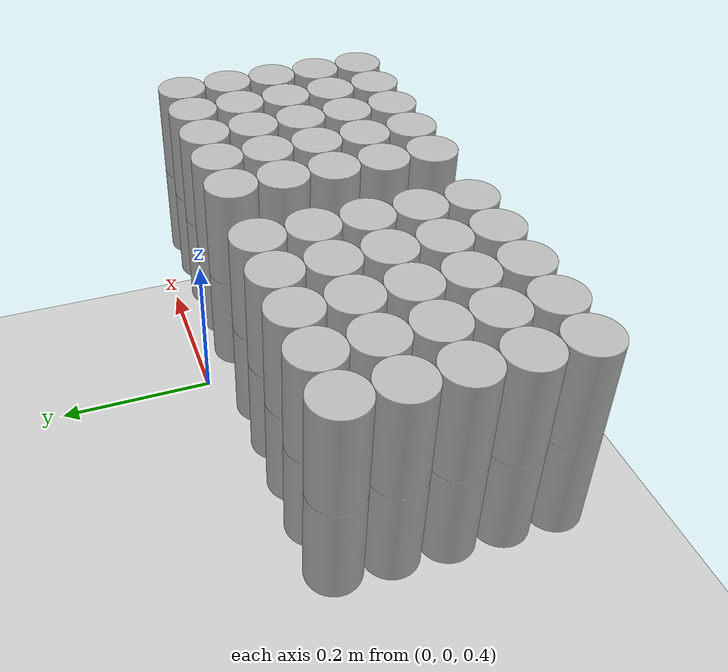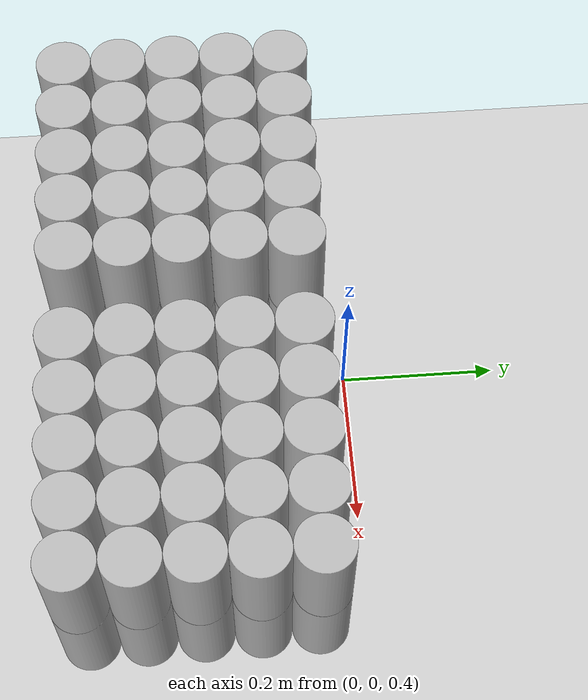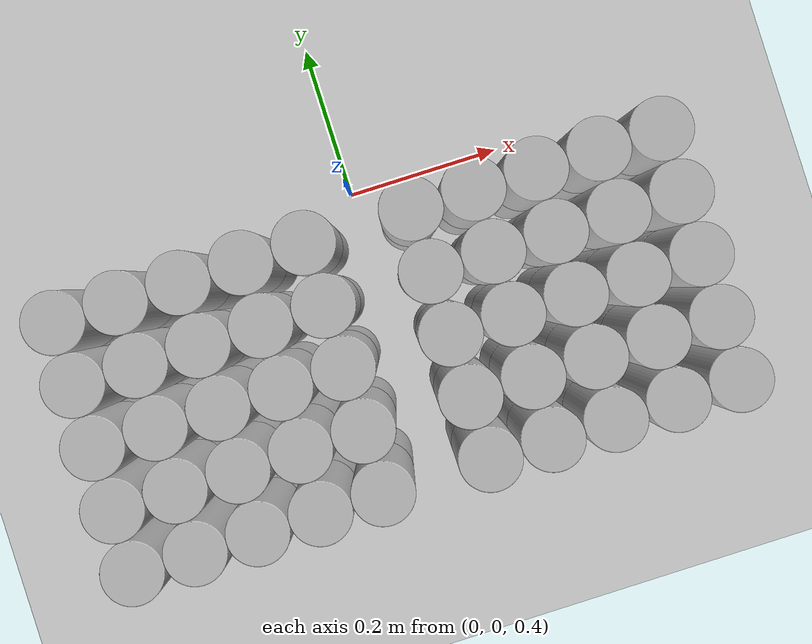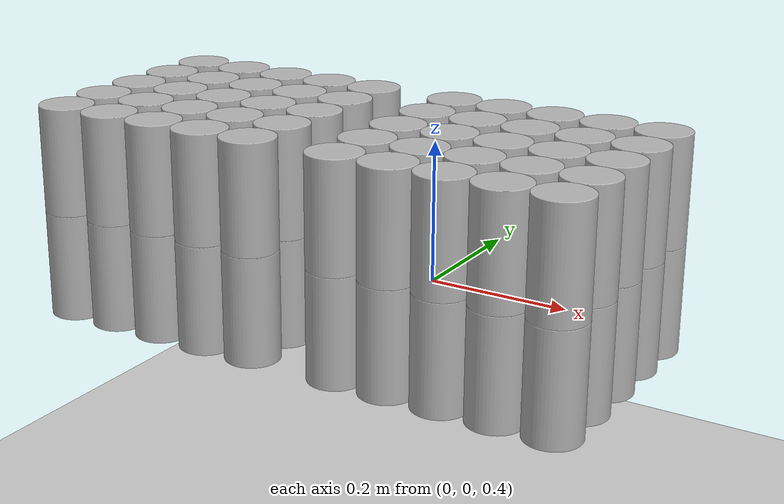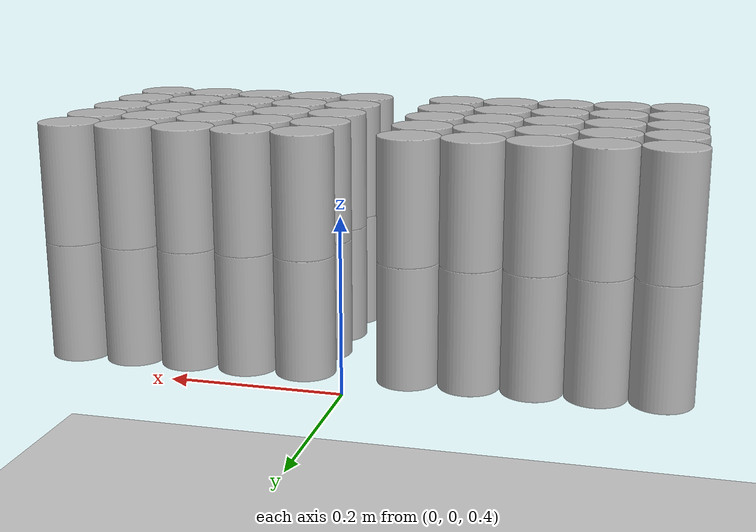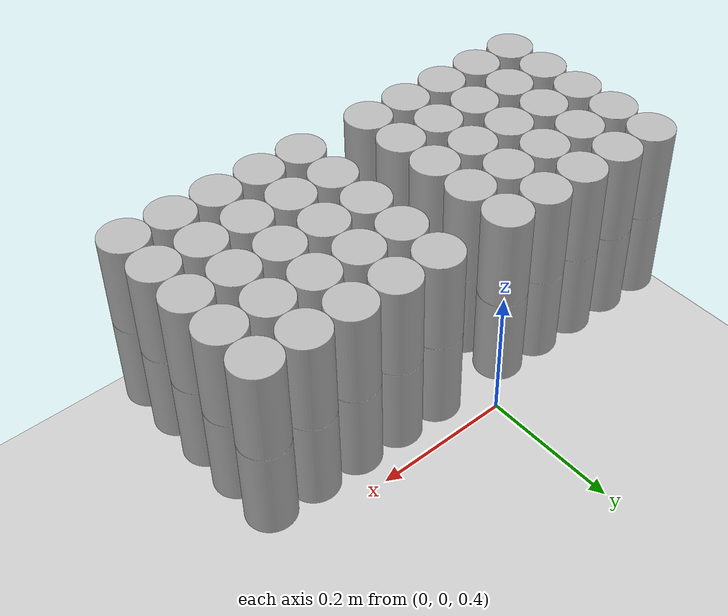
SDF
<sdf version="1.4">
 <world name="default">
  <include><uri>model://sun</uri></include>
  <include><uri>model://ground_plane</uri></include>
  <include>
   <name>chip_star_0.06_-0.34_0.4</name>
   <pose>0.06 -0.34 0.4 0 0 0.372294339718</pose>
   <uri>model://chip_star</uri>
  </include>
  <include>
   <name>chip_star_0.06_-0.34_0.54</name>
   <pose>0.06 -0.34 0.54 0 0 4.19292755349</pose>
   <uri>model://chip_star</uri>
  </include>
  <include>
   <name>chip_star_0.06_-0.27_0.4</name>
   <pose>0.06 -0.27 0.4 0 0 0.649413143931</pose>
   <uri>model://chip_star</uri>
  </include>
  <include>
   <name>chip_star_0.06_-0.27_0.54</name>
   <pose>0.06 -0.27 0.54 0 0 2.176246246</pose>
   <uri>model://chip_star</uri>
  </include>
  <include>
   <name>chip_star_0.06_-0.2_0.4</name>
   <pose>0.06 -0.2 0.4 0 0 1.70386393982</pose>
   <uri>model://chip_star</uri>
  </include>
  <include>
   <name>chip_star_0.06_-0.2_0.54</name>
   <pose>0.06 -0.2 0.54 0 0 2.72870989938</pose>
   <uri>model://chip_star</uri>
  </include>
  <include>
   <name>chip_star_0.06_-0.13_0.4</name>
   <pose>0.06 -0.13 0.4 0 0 4.37968260525</pose>
   <uri>model://chip_star</uri>
  </include>
  <include>
   <name>chip_star_0.06_-0.13_0.54</name>
   <pose>0.06 -0.13 0.54 0 0 3.09603425473</pose>
   <uri>model://chip_star</uri>
  </include>
  <include>
   <name>chip_star_0.06_-0.06_0.4</name>
   <pose>0.06 -0.06 0.4 0 0 3.70830724734</pose>
   <uri>model://chip_star</uri>
  </include>
  <include>
   <name>chip_star_0.06_-0.06_0.54</name>
   <pose>0.06 -0.06 0.54 0 0 0.752157486312</pose>
   <uri>model://chip_star</uri>
  </include>
  <include>
   <name>chip_star_0.13_-0.34_0.4</name>
   <pose>0.13 -0.34 0.4 0 0 4.29740945381</pose>
   <uri>model://chip_star</uri>
  </include>
  <include>
   <name>chip_star_0.13_-0.34_0.54</name>
   <pose>0.13 -0.34 0.54 0 0 4.4844617661</pose>
   <uri>model://chip_star</uri>
  </include>
  <include>
   <name>chip_star_0.13_-0.27_0.4</name>
   <pose>0.13 -0.27 0.4 0 0 3.32425704071</pose>
   <uri>model://chip_star</uri>
  </include>
  <include>
   <name>chip_star_0.13_-0.27_0.54</name>
   <pose>0.13 -0.27 0.54 0 0 1.85671652459</pose>
   <uri>model://chip_star</uri>
  </include>
  <include>
   <name>chip_star_0.13_-0.2_0.4</name>
   <pose>0.13 -0.2 0.4 0 0 3.16116870584</pose>
   <uri>model://chip_star</uri>
  </include>
  <include>
   <name>chip_star_0.13_-0.2_0.54</name>
   <pose>0.13 -0.2 0.54 0 0 3.33403390083</pose>
   <uri>model://chip_star</uri>
  </include>
  <include>
   <name>chip_star_0.13_-0.13_0.4</name>
   <pose>0.13 -0.13 0.4 0 0 5.80240705591</pose>
   <uri>model://chip_star</uri>
  </include>
  <include>
   <name>chip_star_0.13_-0.13_0.54</name>
   <pose>0.13 -0.13 0.54 0 0 5.6091439719</pose>
   <uri>model://chip_star</uri>
  </include>
  <include>
   <name>chip_star_0.13_-0.06_0.4</name>
   <pose>0.13 -0.06 0.4 0 0 0.833396663911</pose>
   <uri>model://chip_star</uri>
  </include>
  <include>
   <name>chip_star_0.13_-0.06_0.54</name>
   <pose>0.13 -0.06 0.54 0 0 1.62273333759</pose>
   <uri>model://chip_star</uri>
  </include>
  <include>
   <name>chip_star_0.2_-0.34_0.4</name>
   <pose>0.2 -0.34 0.4 0 0 4.65339152696</pose>
   <uri>model://chip_star</uri>
  </include>
  <include>
   <name>chip_star_0.2_-0.34_0.54</name>
   <pose>0.2 -0.34 0.54 0 0 5.732125401</pose>
   <uri>model://chip_star</uri>
  </include>
  <include>
   <name>chip_star_0.2_-0.27_0.4</name>
   <pose>0.2 -0.27 0.4 0 0 1.22254227194</pose>
   <uri>model://chip_star</uri>
  </include>
  <include>
   <name>chip_star_0.2_-0.27_0.54</name>
   <pose>0.2 -0.27 0.54 0 0 5.58842558442</pose>
   <uri>model://chip_star</uri>
  </include>
  <include>
   <name>chip_star_0.2_-0.2_0.4</name>
   <pose>0.2 -0.2 0.4 0 0 4.87542025387</pose>
   <uri>model://chip_star</uri>
  </include>
  <include>
   <name>chip_star_0.2_-0.2_0.54</name>
   <pose>0.2 -0.2 0.54 0 0 3.46739016859</pose>
   <uri>model://chip_star</uri>
  </include>
  <include>
   <name>chip_star_0.2_-0.13_0.4</name>
   <pose>0.2 -0.13 0.4 0 0 2.32955553333</pose>
   <uri>model://chip_star</uri>
  </include>
  <include>
   <name>chip_star_0.2_-0.13_0.54</name>
   <pose>0.2 -0.13 0.54 0 0 3.9007451683</pose>
   <uri>model://chip_star</uri>
  </include>
  <include>
   <name>chip_star_0.2_-0.06_0.4</name>
   <pose>0.2 -0.06 0.4 0 0 0.936701939629</pose>
   <uri>model://chip_star</uri>
  </include>
  <include>
   <name>chip_star_0.2_-0.06_0.54</name>
   <pose>0.2 -0.06 0.54 0 0 5.95838173971</pose>
   <uri>model://chip_star</uri>
  </include>
  <include>
   <name>chip_star_0.27_-0.34_0.4</name>
   <pose>0.27 -0.34 0.4 0 0 3.3639498487</pose>
   <uri>model://chip_star</uri>
  </include>
  <include>
   <name>chip_star_0.27_-0.34_0.54</name>
   <pose>0.27 -0.34 0.54 0 0 5.31358131536</pose>
   <uri>model://chip_star</uri>
  </include>
  <include>
   <name>chip_star_0.27_-0.27_0.4</name>
   <pose>0.27 -0.27 0.4 0 0 4.70743878205</pose>
   <uri>model://chip_star</uri>
  </include>
  <include>
   <name>chip_star_0.27_-0.27_0.54</name>
   <pose>0.27 -0.27 0.54 0 0 0.914751146178</pose>
   <uri>model://chip_star</uri>
  </include>
  <include>
   <name>chip_star_0.27_-0.2_0.4</name>
   <pose>0.27 -0.2 0.4 0 0 6.01195950028</pose>
   <uri>model://chip_star</uri>
  </include>
  <include>
   <name>chip_star_0.27_-0.2_0.54</name>
   <pose>0.27 -0.2 0.54 0 0 0.447410868555</pose>
   <uri>model://chip_star</uri>
  </include>
  <include>
   <name>chip_star_0.27_-0.13_0.4</name>
   <pose>0.27 -0.13 0.4 0 0 0.595209257754</pose>
   <uri>model://chip_star</uri>
  </include>
  <include>
   <name>chip_star_0.27_-0.13_0.54</name>
   <pose>0.27 -0.13 0.54 0 0 3.65223066433</pose>
   <uri>model://chip_star</uri>
  </include>
  <include>
   <name>chip_star_0.27_-0.06_0.4</name>
   <pose>0.27 -0.06 0.4 0 0 2.73674239852</pose>
   <uri>model://chip_star</uri>
  </include>
  <include>
   <name>chip_star_0.27_-0.06_0.54</name>
   <pose>0.27 -0.06 0.54 0 0 4.38754162183</pose>
   <uri>model://chip_star</uri>
  </include>
  <include>
   <name>chip_star_0.34_-0.34_0.4</name>
   <pose>0.34 -0.34 0.4 0 0 4.80360037068</pose>
   <uri>model://chip_star</uri>
  </include>
  <include>
   <name>chip_star_0.34_-0.34_0.54</name>
   <pose>0.34 -0.34 0.54 0 0 2.86150309367</pose>
   <uri>model://chip_star</uri>
  </include>
  <include>
   <name>chip_star_0.34_-0.27_0.4</name>
   <pose>0.34 -0.27 0.4 0 0 0.0560580999732</pose>
   <uri>model://chip_star</uri>
  </include>
  <include>
   <name>chip_star_0.34_-0.27_0.54</name>
   <pose>0.34 -0.27 0.54 0 0 4.89562047394</pose>
   <uri>model://chip_star</uri>
  </include>
  <include>
   <name>chip_star_0.34_-0.2_0.4</name>
   <pose>0.34 -0.2 0.4 0 0 0.762297231731</pose>
   <uri>model://chip_star</uri>
  </include>
  <include>
   <name>chip_star_0.34_-0.2_0.54</name>
   <pose>0.34 -0.2 0.54 0 0 2.6883236201</pose>
   <uri>model://chip_star</uri>
  </include>
  <include>
   <name>chip_star_0.34_-0.13_0.4</name>
   <pose>0.34 -0.13 0.4 0 0 2.18647997416</pose>
   <uri>model://chip_star</uri>
  </include>
  <include>
   <name>chip_star_0.34_-0.13_0.54</name>
   <pose>0.34 -0.13 0.54 0 0 5.72185905281</pose>
   <uri>model://chip_star</uri>
  </include>
  <include>
   <name>chip_star_0.34_-0.06_0.4</name>
   <pose>0.34 -0.06 0.4 0 0 3.44525387029</pose>
   <uri>model://chip_star</uri>
  </include>
  <include>
   <name>chip_star_0.34_-0.06_0.54</name>
   <pose>0.34 -0.06 0.54 0 0 6.18705040045</pose>
   <uri>model://chip_star</uri>
  </include>
  <include>
   <name>chip_star_-0.34_-0.34_0.4</name>
   <pose>-0.34 -0.34 0.4 0 0 4.74523961227</pose>
   <uri>model://chip_star</uri>
  </include>
  <include>
   <name>chip_star_-0.34_-0.34_0.54</name>
   <pose>-0.34 -0.34 0.54 0 0 5.267206182</pose>
   <uri>model://chip_star</uri>
  </include>
  <include>
   <name>chip_star_-0.34_-0.27_0.4</name>
   <pose>-0.34 -0.27 0.4 0 0 3.96980745258</pose>
   <uri>model://chip_star</uri>
  </include>
  <include>
   <name>chip_star_-0.34_-0.27_0.54</name>
   <pose>-0.34 -0.27 0.54 0 0 0.0983005787642</pose>
   <uri>model://chip_star</uri>
  </include>
  <include>
   <name>chip_star_-0.34_-0.2_0.4</name>
   <pose>-0.34 -0.2 0.4 0 0 5.33974261986</pose>
   <uri>model://chip_star</uri>
  </include>
  <include>
   <name>chip_star_-0.34_-0.2_0.54</name>
   <pose>-0.34 -0.2 0.54 0 0 2.93321133187</pose>
   <uri>model://chip_star</uri>
  </include>
  <include>
   <name>chip_star_-0.34_-0.13_0.4</name>
   <pose>-0.34 -0.13 0.4 0 0 5.2800282253</pose>
   <uri>model://chip_star</uri>
  </include>
  <include>
   <name>chip_star_-0.34_-0.13_0.54</name>
   <pose>-0.34 -0.13 0.54 0 0 0.82728418334</pose>
   <uri>model://chip_star</uri>
  </include>
  <include>
   <name>chip_star_-0.34_-0.06_0.4</name>
   <pose>-0.34 -0.06 0.4 0 0 1.21066103066</pose>
   <uri>model://chip_star</uri>
  </include>
  <include>
   <name>chip_star_-0.34_-0.06_0.54</name>
   <pose>-0.34 -0.06 0.54 0 0 0.856174993623</pose>
   <uri>model://chip_star</uri>
  </include>
  <include>
   <name>chip_star_-0.27_-0.34_0.4</name>
   <pose>-0.27 -0.34 0.4 0 0 3.16734175008</pose>
   <uri>model://chip_star</uri>
  </include>
  <include>
   <name>chip_star_-0.27_-0.34_0.54</name>
   <pose>-0.27 -0.34 0.54 0 0 1.41382958626</pose>
   <uri>model://chip_star</uri>
  </include>
  <include>
   <name>chip_star_-0.27_-0.27_0.4</name>
   <pose>-0.27 -0.27 0.4 0 0 5.3569934783</pose>
   <uri>model://chip_star</uri>
  </include>
  <include>
   <name>chip_star_-0.27_-0.27_0.54</name>
   <pose>-0.27 -0.27 0.54 0 0 5.22238500946</pose>
   <uri>model://chip_star</uri>
  </include>
  <include>
   <name>chip_star_-0.27_-0.2_0.4</name>
   <pose>-0.27 -0.2 0.4 0 0 2.75035708088</pose>
   <uri>model://chip_star</uri>
  </include>
  <include>
   <name>chip_star_-0.27_-0.2_0.54</name>
   <pose>-0.27 -0.2 0.54 0 0 2.79618511652</pose>
   <uri>model://chip_star</uri>
  </include>
  <include>
   <name>chip_star_-0.27_-0.13_0.4</name>
   <pose>-0.27 -0.13 0.4 0 0 4.50647452072</pose>
   <uri>model://chip_star</uri>
  </include>
  <include>
   <name>chip_star_-0.27_-0.13_0.54</name>
   <pose>-0.27 -0.13 0.54 0 0 2.152773178</pose>
   <uri>model://chip_star</uri>
  </include>
  <include>
   <name>chip_star_-0.27_-0.06_0.4</name>
   <pose>-0.27 -0.06 0.4 0 0 0.737874249353</pose>
   <uri>model://chip_star</uri>
  </include>
  <include>
   <name>chip_star_-0.27_-0.06_0.54</name>
   <pose>-0.27 -0.06 0.54 0 0 1.57082152734</pose>
   <uri>model://chip_star</uri>
  </include>
  <include>
   <name>chip_star_-0.2_-0.34_0.4</name>
   <pose>-0.2 -0.34 0.4 0 0 2.25881798017</pose>
   <uri>model://chip_star</uri>
  </include>
  <include>
   <name>chip_star_-0.2_-0.34_0.54</name>
   <pose>-0.2 -0.34 0.54 0 0 3.94785042218</pose>
   <uri>model://chip_star</uri>
  </include>
  <include>
   <name>chip_star_-0.2_-0.27_0.4</name>
   <pose>-0.2 -0.27 0.4 0 0 0.226081913397</pose>
   <uri>model://chip_star</uri>
  </include>
  <include>
   <name>chip_star_-0.2_-0.27_0.54</name>
   <pose>-0.2 -0.27 0.54 0 0 0.579603647244</pose>
   <uri>model://chip_star</uri>
  </include>
  <include>
   <name>chip_star_-0.2_-0.2_0.4</name>
   <pose>-0.2 -0.2 0.4 0 0 0.0538162774762</pose>
   <uri>model://chip_star</uri>
  </include>
  <include>
   <name>chip_star_-0.2_-0.2_0.54</name>
   <pose>-0.2 -0.2 0.54 0 0 5.44652367695</pose>
   <uri>model://chip_star</uri>
  </include>
  <include>
   <name>chip_star_-0.2_-0.13_0.4</name>
   <pose>-0.2 -0.13 0.4 0 0 5.74145421764</pose>
   <uri>model://chip_star</uri>
  </include>
  <include>
   <name>chip_star_-0.2_-0.13_0.54</name>
   <pose>-0.2 -0.13 0.54 0 0 5.46293181954</pose>
   <uri>model://chip_star</uri>
  </include>
  <include>
   <name>chip_star_-0.2_-0.06_0.4</name>
   <pose>-0.2 -0.06 0.4 0 0 1.60818562372</pose>
   <uri>model://chip_star</uri>
  </include>
  <include>
   <name>chip_star_-0.2_-0.06_0.54</name>
   <pose>-0.2 -0.06 0.54 0 0 0.463479647646</pose>
   <uri>model://chip_star</uri>
  </include>
  <include>
   <name>chip_star_-0.13_-0.34_0.4</name>
   <pose>-0.13 -0.34 0.4 0 0 1.05210789007</pose>
   <uri>model://chip_star</uri>
  </include>
  <include>
   <name>chip_star_-0.13_-0.34_0.54</name>
   <pose>-0.13 -0.34 0.54 0 0 1.36890526933</pose>
   <uri>model://chip_star</uri>
  </include>
  <include>
   <name>chip_star_-0.13_-0.27_0.4</name>
   <pose>-0.13 -0.27 0.4 0 0 3.29428456557</pose>
   <uri>model://chip_star</uri>
  </include>
  <include>
   <name>chip_star_-0.13_-0.27_0.54</name>
   <pose>-0.13 -0.27 0.54 0 0 5.941321986</pose>
   <uri>model://chip_star</uri>
  </include>
  <include>
   <name>chip_star_-0.13_-0.2_0.4</name>
   <pose>-0.13 -0.2 0.4 0 0 3.49073549376</pose>
   <uri>model://chip_star</uri>
  </include>
  <include>
   <name>chip_star_-0.13_-0.2_0.54</name>
   <pose>-0.13 -0.2 0.54 0 0 5.45576144902</pose>
   <uri>model://chip_star</uri>
  </include>
  <include>
   <name>chip_star_-0.13_-0.13_0.4</name>
   <pose>-0.13 -0.13 0.4 0 0 4.47701556051</pose>
   <uri>model://chip_star</uri>
  </include>
  <include>
   <name>chip_star_-0.13_-0.13_0.54</name>
   <pose>-0.13 -0.13 0.54 0 0 1.02147547632</pose>
   <uri>model://chip_star</uri>
  </include>
  <include>
   <name>chip_star_-0.13_-0.06_0.4</name>
   <pose>-0.13 -0.06 0.4 0 0 6.21789496706</pose>
   <uri>model://chip_star</uri>
  </include>
  <include>
   <name>chip_star_-0.13_-0.06_0.54</name>
   <pose>-0.13 -0.06 0.54 0 0 5.20087850422</pose>
   <uri>model://chip_star</uri>
  </include>
  <include>
   <name>chip_star_-0.06_-0.34_0.4</name>
   <pose>-0.06 -0.34 0.4 0 0 3.74130414311</pose>
   <uri>model://chip_star</uri>
  </include>
  <include>
   <name>chip_star_-0.06_-0.34_0.54</name>
   <pose>-0.06 -0.34 0.54 0 0 1.09740638952</pose>
   <uri>model://chip_star</uri>
  </include>
  <include>
   <name>chip_star_-0.06_-0.27_0.4</name>
   <pose>-0.06 -0.27 0.4 0 0 2.91411030291</pose>
   <uri>model://chip_star</uri>
  </include>
  <include>
   <name>chip_star_-0.06_-0.27_0.54</name>
   <pose>-0.06 -0.27 0.54 0 0 6.01502053124</pose>
   <uri>model://chip_star</uri>
  </include>
  <include>
   <name>chip_star_-0.06_-0.2_0.4</name>
   <pose>-0.06 -0.2 0.4 0 0 3.98400744292</pose>
   <uri>model://chip_star</uri>
  </include>
  <include>
   <name>chip_star_-0.06_-0.2_0.54</name>
   <pose>-0.06 -0.2 0.54 0 0 5.65350527438</pose>
   <uri>model://chip_star</uri>
  </include>
  <include>
   <name>chip_star_-0.06_-0.13_0.4</name>
   <pose>-0.06 -0.13 0.4 0 0 3.45672733953</pose>
   <uri>model://chip_star</uri>
  </include>
  <include>
   <name>chip_star_-0.06_-0.13_0.54</name>
   <pose>-0.06 -0.13 0.54 0 0 3.58823050517</pose>
   <uri>model://chip_star</uri>
  </include>
  <include>
   <name>chip_star_-0.06_-0.06_0.4</name>
   <pose>-0.06 -0.06 0.4 0 0 4.19055163472</pose>
   <uri>model://chip_star</uri>
  </include>
  <include>
   <name>chip_star_-0.06_-0.06_0.54</name>
   <pose>-0.06 -0.06 0.54 0 0 2.24865654995</pose>
   <uri>model://chip_star</uri>
  </include>
 </world>
</sdf>

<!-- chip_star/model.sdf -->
<sdf version="1.4">
  <model name="Chip Star">
    <link name="chip_star_link">
      <inertial>
        <pose>0.0 0.0 0.07 0 0 0</pose>
        <mass>0.07</mass>
        <inertia>
          <ixx>0.00047877</ixx>
          <ixy>0</ixy>
          <ixz>0</ixz>
          <izz>0.00004288</izz>
          <iyz>0</iyz>
          <iyy>0.00047877</iyy>
        </inertia>
      </inertial>

      <visual name="chip_star_visual">
        <pose>0 0 0 0 0 3.1415</pose>
        <geometry>
          <mesh>
            <uri>model://chip_star/meshes/chip_star.dae</uri>
          </mesh>
        </geometry>
      </visual>

      <collision name="chip_star_collision">
        <pose>0 0 0 0 0 3.1415</pose>
        <geometry>
          <mesh>
            <uri>model://chip_star/meshes/chip_star.dae</uri>
          </mesh>
        </geometry>
      </collision>

    </link>
  </model>
</sdf>
